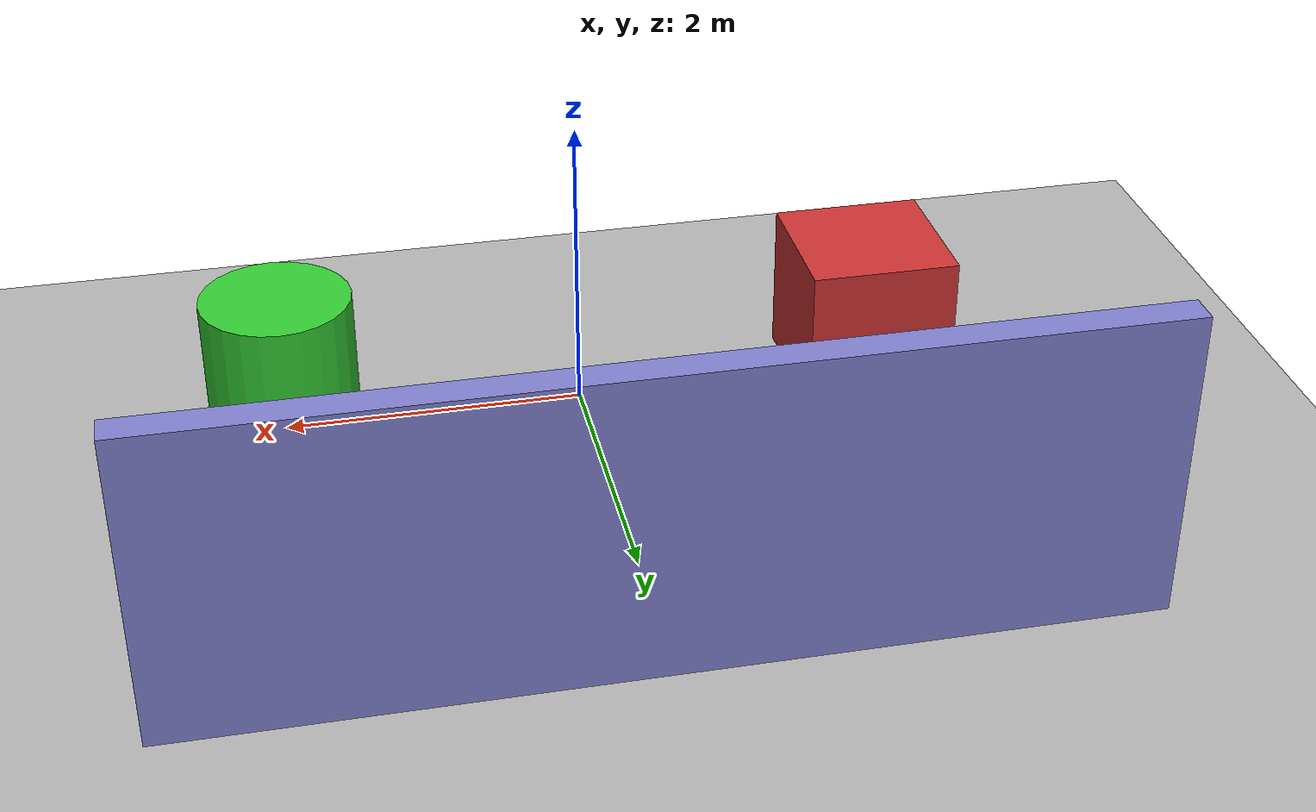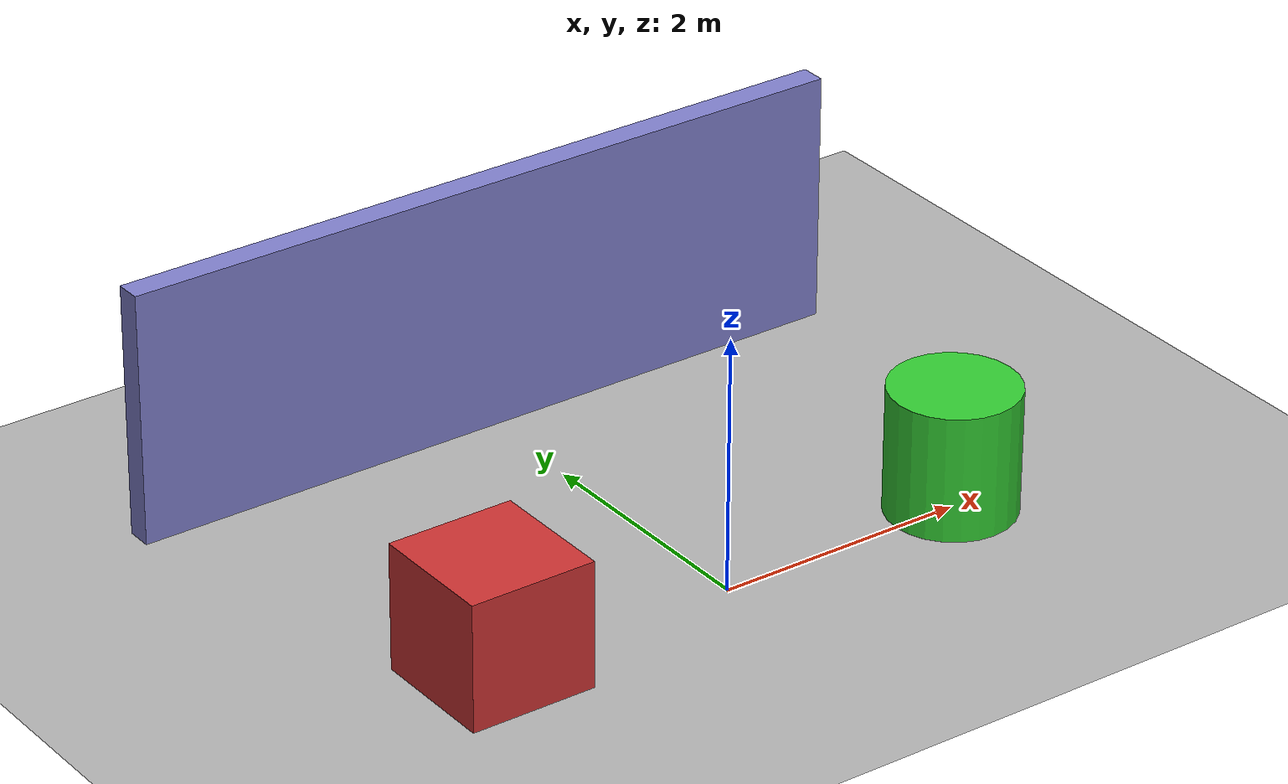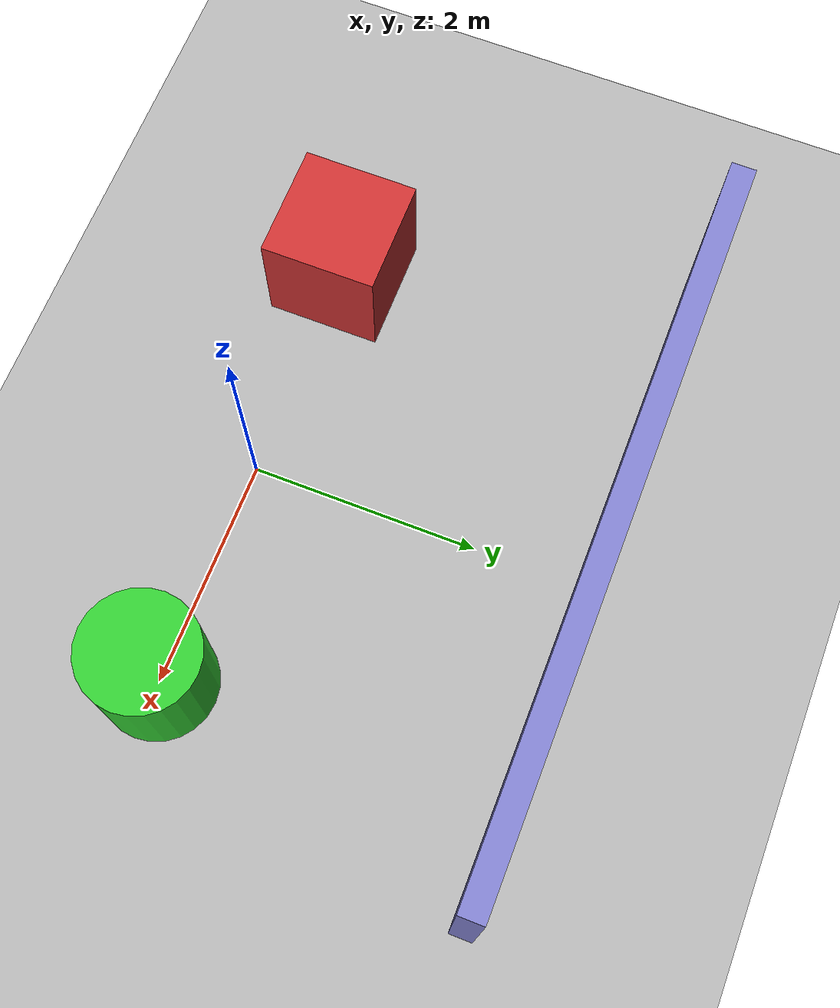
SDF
<?xml version="1.0" ?>
<sdf version="1.7">
  <world name="humanoid_arena">
    <!-- Physics parameters -->
    <physics name="1ms" type="ode">
      <gravity>0 0 -9.8</gravity>
      <max_step_size>0.001</max_step_size>
      <real_time_factor>1.0</real_time_factor>
      <real_time_update_rate>1000.0</real_time_update_rate>
      <ode>
        <solver>
          <type>quick</type>
          <iters>10</iters>
          <sor>1.3</sor>
        </solver>
        <constraints>
          <cfm>0.0</cfm>
          <erp>0.2</erp>
          <contact_max_correcting_vel>100.0</contact_max_correcting_vel>
          <contact_surface_layer>0.001</contact_surface_layer>
        </constraints>
      </ode>
    </physics>

    <!-- Lighting -->
    <light name="sun" type="directional">
      <cast_shadows>true</cast_shadows>
      <pose>0 0 10 0 0 0</pose>
      <diffuse>0.8 0.8 0.8 1</diffuse>
      <specular>0.2 0.2 0.2 1</specular>
      <attenuation>
        <range>1000</range>
        <constant>0.9</constant>
        <linear>0.01</linear>
        <quadratic>0.001</quadratic>
      </attenuation>
      <direction>-0.6 0.4 -0.8</direction>
    </light>

    <!-- Ground plane -->
    <model name="ground_plane">
      <static>true</static>
      <link name="link">
        <collision name="collision">
          <geometry>
            <plane>
              <normal>0 0 1</normal>
              <size>100 100</size>
            </plane>
          </geometry>
          <surface>
            <friction>
              <ode>
                <mu>1.0</mu>
                <mu2>1.0</mu2>
              </ode>
              <torsional>
                <coefficient>1.0</coefficient>
              </torsional>
            </friction>
            <bounce>
              <restitution_coefficient>0.01</restitution_coefficient>
              <threshold>100000</threshold>
            </bounce>
            <contact>
              <ode>
                <soft_cfm>0</soft_cfm>
                <soft_erp>0.2</soft_erp>
                <kp>1e+13</kp>
                <kd>1</kd>
                <max_vel>100.0</max_vel>
                <min_depth>0.001</min_depth>
              </ode>
            </contact>
          </surface>
        </collision>
        <visual name="visual">
          <geometry>
            <plane>
              <normal>0 0 1</normal>
              <size>100 100</size>
            </plane>
          </geometry>
          <material>
            <ambient>0.3 0.3 0.3 1</ambient>
            <diffuse>0.7 0.7 0.7 1</diffuse>
            <specular>0.3 0.3 0.3 1</specular>
          </material>
        </visual>
      </link>
    </model>

    <!-- Obstacles -->
    <!-- Cube obstacle -->
    <model name="cube_obstacle">
      <pose>-2 0 0.5 0 0 0</pose>
      <link name="link">
        <collision name="collision">
          <geometry>
            <box>
              <size>1 1 1</size>
            </box>
          </geometry>
          <surface>
            <friction>
              <ode>
                <mu>1.0</mu>
                <mu2>1.0</mu2>
              </ode>
            </friction>
          </surface>
        </collision>
        <visual name="visual">
          <geometry>
            <box>
              <size>1 1 1</size>
            </box>
          </geometry>
          <material>
            <ambient>0.5 0.1 0.1 1</ambient>
            <diffuse>0.8 0.2 0.2 1</diffuse>
            <specular>0.3 0.3 0.3 1</specular>
          </material>
        </visual>
        <inertial>
          <mass>1.0</mass>
          <inertia>
            <ixx>0.166667</ixx>
            <ixy>0</ixy>
            <ixz>0</ixz>
            <iyy>0.166667</iyy>
            <iyz>0</iyz>
            <izz>0.166667</izz>
          </inertia>
        </inertial>
      </link>
    </model>

    <!-- Cylinder obstacle -->
    <model name="cylinder_obstacle">
      <pose>2 0 0.5 0 0 0</pose>
      <link name="link">
        <collision name="collision">
          <geometry>
            <cylinder>
              <radius>0.5</radius>
              <length>1.0</length>
            </cylinder>
          </geometry>
          <surface>
            <friction>
              <ode>
                <mu>1.0</mu>
                <mu2>1.0</mu2>
              </ode>
            </friction>
          </surface>
        </collision>
        <visual name="visual">
          <geometry>
            <cylinder>
              <radius>0.5</radius>
              <length>1.0</length>
            </cylinder>
          </geometry>
          <material>
            <ambient>0.1 0.5 0.1 1</ambient>
            <diffuse>0.2 0.8 0.2 1</diffuse>
            <specular>0.3 0.3 0.3 1</specular>
          </material>
        </visual>
        <inertial>
          <mass>1.0</mass>
          <inertia>
            <ixx>0.291667</ixx>
            <ixy>0</ixy>
            <ixz>0</ixz>
            <iyy>0.291667</iyy>
            <iyz>0</iyz>
            <izz>0.125</izz>
          </inertia>
        </inertial>
      </link>
    </model>

    <!-- Wall obstacle -->
    <model name="wall_obstacle">
      <pose>0 3 1 0 0 0</pose>
      <link name="link">
        <collision name="collision">
          <geometry>
            <box>
              <size>6 0.2 2</size>
            </box>
          </geometry>
          <surface>
            <friction>
              <ode>
                <mu>1.0</mu>
                <mu2>1.0</mu2>
              </ode>
            </friction>
          </surface>
        </collision>
        <visual name="visual">
          <geometry>
            <box>
              <size>6 0.2 2</size>
            </box>
          </geometry>
          <material>
            <ambient>0.3 0.3 0.5 1</ambient>
            <diffuse>0.5 0.5 0.8 1</diffuse>
            <specular>0.3 0.3 0.3 1</specular>
          </material>
        </visual>
        <inertial>
          <mass>10.0</mass>
          <inertia>
            <ixx>3.383333</ixx>
            <ixy>0</ixy>
            <ixz>0</ixz>
            <iyy>30.833333</iyy>
            <iyz>0</iyz>
            <izz>33.833333</izz>
          </inertia>
        </inertial>
      </link>
    </model>

    <!-- Plugins -->
    <plugin filename="libgazebo_ros_init.so" name="gazebo_ros_init">
    </plugin>

    <plugin filename="libgazebo_ros_factory.so" name="gazebo_ros_factory">
    </plugin>
  </world>
</sdf>
